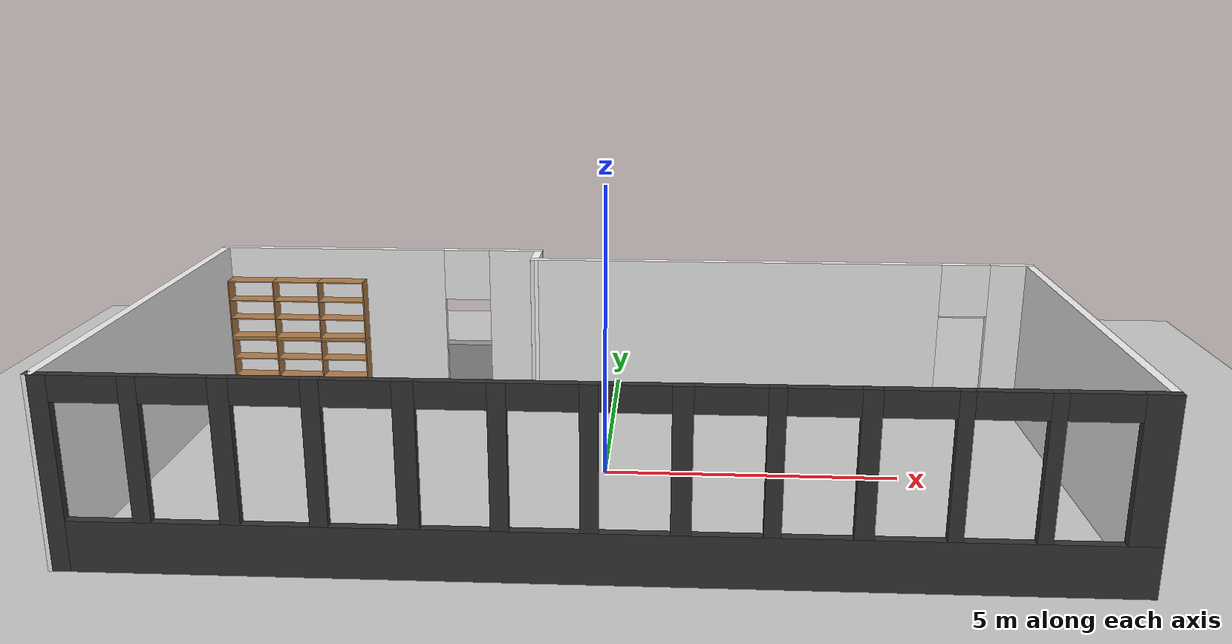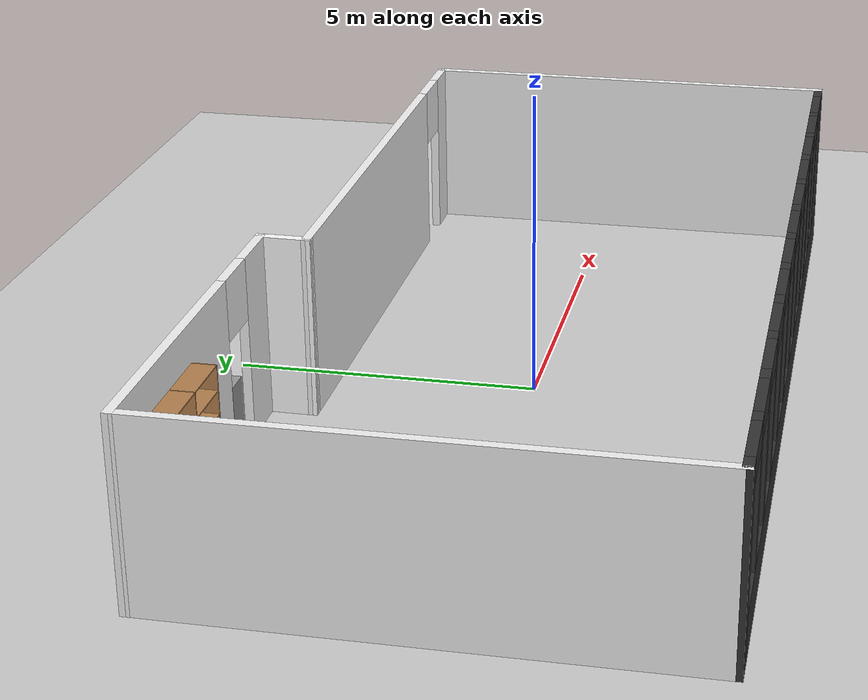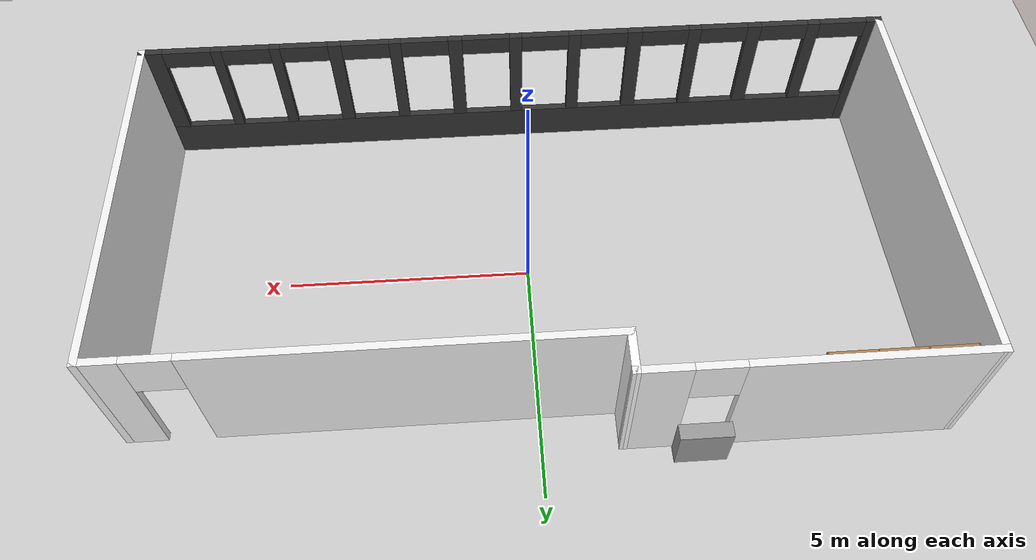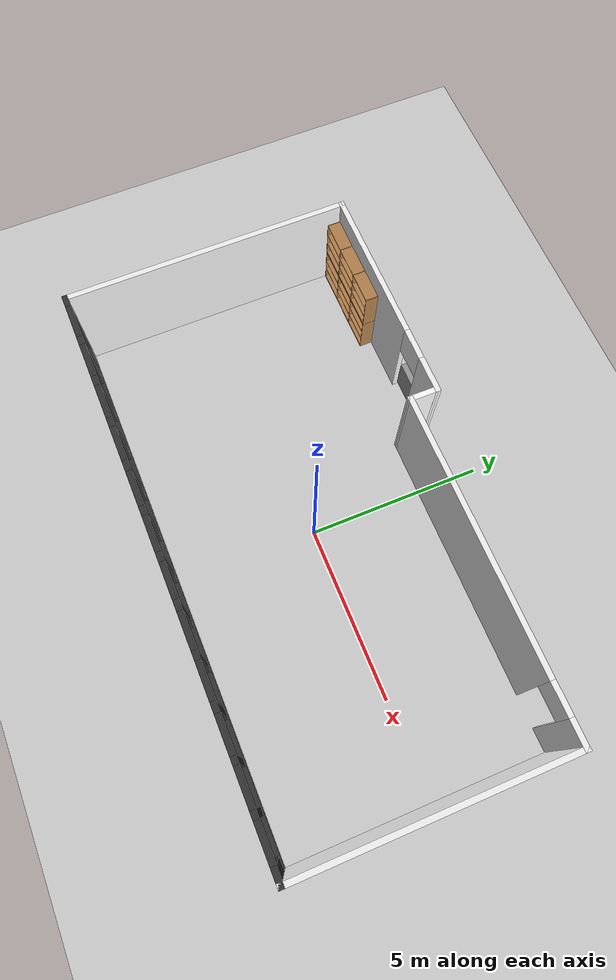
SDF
<sdf version="1.6">
 <world name="default">
  <model name="lab_empty">
   <link name="Wall_10">
    <pose>-4.66996 4.04955 0 0 -0 0</pose>
    <visual name="Wall_10_Visual_0">
     <pose>-0.979064 0 1.5 0 -0 0</pose>
     <geometry><box><size>4.46087 0.15 3</size></box></geometry>
     <material>
      <script>
       <uri>file://final_project_world/materials/scripts</uri>
       <uri>file://final_project_world/materials/textures</uri>
       <name>Wall/Image</name>
      </script>
      <ambient>0.95 0.95 0.95 1</ambient>
     </material>
     <meta><layer>0</layer></meta>
    </visual>
    <collision name="Wall_10_Collision_0">
     <geometry><box><size>4.46087 0.15 3</size></box></geometry>
     <pose>-0.979064 0 1.5 0 -0 0</pose>
    </collision>
    <visual name="Wall_10_Visual_1">
     <pose>2.68044 0 1.5 0 -0 0</pose>
     <geometry><box><size>1.05813 0.15 3</size></box></geometry>
     <material>
      <script>
       <uri>file://final_project_world/materials/scripts</uri>
       <uri>file://final_project_world/materials/textures</uri>
       <name>Wall/Image</name>
      </script>
      <ambient>0.95 0.95 0.95 1</ambient>
     </material>
     <meta><layer>0</layer></meta>
    </visual>
    <collision name="Wall_10_Collision_1">
     <geometry><box><size>1.05813 0.15 3</size></box></geometry>
     <pose>2.68044 0 1.5 0 -0 0</pose>
    </collision>
    <visual name="Wall_10_Visual_2">
     <pose>1.70137 0 2.5 0 -0 0</pose>
     <geometry><box><size>0.9 0.15 1</size></box></geometry>
     <material>
      <script>
       <uri>file://final_project_world/materials/scripts</uri>
       <uri>file://final_project_world/materials/textures</uri>
       <name>Wall/Image</name>
      </script>
      <ambient>0.95 0.95 0.95 1</ambient>
     </material>
     <meta><layer>0</layer></meta>
    </visual>
    <collision name="Wall_10_Collision_2">
     <geometry><box><size>0.9 0.15 1</size></box></geometry>
     <pose>1.70137 0 2.5 0 -0 0</pose>
    </collision>
   </link>
   <link name="Wall_13">
    <collision name="Wall_13_Collision">
     <geometry><box><size>0.900067 0.15 3</size></box></geometry>
     <pose>0 0 1.5 0 -0 0</pose>
    </collision>
    <visual name="Wall_13_Visual">
     <pose>0 0 1.5 0 -0 0</pose>
     <geometry><box><size>0.900067 0.15 3</size></box></geometry>
     <material>
      <script>
       <uri>file://final_project_world/materials/scripts</uri>
       <uri>file://final_project_world/materials/textures</uri>
       <name>Wall/Image</name>
      </script>
      <ambient>1 1 1 1</ambient>
     </material>
     <meta><layer>0</layer></meta>
    </visual>
    <pose>-1.54046 3.67455 0 0 -0 -1.58413</pose>
   </link>
   <link name="Wall_15">
    <pose>0.004542 -4.05046 0 0 -0 0</pose>
    <visual name="Wall_15_Visual_0">
     <pose>-7.70321 0 1.5 0 -0 0</pose>
     <geometry><box><size>0.343585 0.15 3</size></box></geometry>
     <material>
      <script>
       <uri>file://final_project_world/materials/scripts</uri>
       <uri>file://final_project_world/materials/textures</uri>
       <name>Wall/Image</name>
      </script>
      <ambient>0.2 0.2 0.2 1</ambient>
     </material>
     <meta><layer>0</layer></meta>
    </visual>
    <collision name="Wall_15_Collision_0">
     <geometry><box><size>0.343585 0.15 3</size></box></geometry>
     <pose>-7.70321 0 1.5 0 -0 0</pose>
    </collision>
    <visual name="Wall_15_Visual_1">
     <pose>0.171792 0 0.4 0 -0 0</pose>
     <geometry><box><size>15.4064 0.15 0.8</size></box></geometry>
     <material>
      <script>
       <uri>file://final_project_world/materials/scripts</uri>
       <uri>file://final_project_world/materials/textures</uri>
       <name>Wall/Image</name>
      </script>
      <ambient>0.2 0.2 0.2 1</ambient>
     </material>
     <meta><layer>0</layer></meta>
    </visual>
    <collision name="Wall_15_Collision_1">
     <geometry><box><size>15.4064 0.15 0.8</size></box></geometry>
     <pose>0.171792 0 0.4 0 -0 0</pose>
    </collision>
    <visual name="Wall_15_Visual_2">
     <pose>-6.39989 0 1.9 0 -0 0</pose>
     <geometry><box><size>0.263044 0.15 2.2</size></box></geometry>
     <material>
      <script>
       <uri>file://final_project_world/materials/scripts</uri>
       <uri>file://final_project_world/materials/textures</uri>
       <name>Wall/Image</name>
      </script>
      <ambient>0.2 0.2 0.2 1</ambient>
     </material>
     <meta><layer>0</layer></meta>
    </visual>
    <collision name="Wall_15_Collision_2">
     <geometry><box><size>0.263044 0.15 2.2</size></box></geometry>
     <pose>-6.39989 0 1.9 0 -0 0</pose>
    </collision>
    <visual name="Wall_15_Visual_3">
     <pose>-5.12163 0 1.9 0 -0 0</pose>
     <geometry><box><size>0.293478 0.15 2.2</size></box></geometry>
     <material>
      <script>
       <uri>file://final_project_world/materials/scripts</uri>
       <uri>file://final_project_world/materials/textures</uri>
       <name>Wall/Image</name>
      </script>
      <ambient>0.2 0.2 0.2 1</ambient>
     </material>
     <meta><layer>0</layer></meta>
    </visual>
    <collision name="Wall_15_Collision_3">
     <geometry><box><size>0.293478 0.15 2.2</size></box></geometry>
     <pose>-5.12163 0 1.9 0 -0 0</pose>
    </collision>
    <visual name="Wall_15_Visual_4">
     <pose>-3.84337 0 1.9 0 -0 0</pose>
     <geometry><box><size>0.263043 0.15 2.2</size></box></geometry>
     <material>
      <script>
       <uri>file://final_project_world/materials/scripts</uri>
       <uri>file://final_project_world/materials/textures</uri>
       <name>Wall/Image</name>
      </script>
      <ambient>0.2 0.2 0.2 1</ambient>
     </material>
     <meta><layer>0</layer></meta>
    </visual>
    <collision name="Wall_15_Collision_4">
     <geometry><box><size>0.263043 0.15 2.2</size></box></geometry>
     <pose>-3.84337 0 1.9 0 -0 0</pose>
    </collision>
    <visual name="Wall_15_Visual_5">
     <pose>-2.5575 0 1.9 0 -0 0</pose>
     <geometry><box><size>0.308696 0.15 2.2</size></box></geometry>
     <material>
      <script>
       <uri>file://final_project_world/materials/scripts</uri>
       <uri>file://final_project_world/materials/textures</uri>
       <name>Wall/Image</name>
      </script>
      <ambient>0.2 0.2 0.2 1</ambient>
     </material>
     <meta><layer>0</layer></meta>
    </visual>
    <collision name="Wall_15_Collision_5">
     <geometry><box><size>0.308696 0.15 2.2</size></box></geometry>
     <pose>-2.5575 0 1.9 0 -0 0</pose>
    </collision>
    <visual name="Wall_15_Visual_6">
     <pose>-1.27163 0 1.9 0 -0 0</pose>
     <geometry><box><size>0.263044 0.15 2.2</size></box></geometry>
     <material>
      <script>
       <uri>file://final_project_world/materials/scripts</uri>
       <uri>file://final_project_world/materials/textures</uri>
       <name>Wall/Image</name>
      </script>
      <ambient>0.2 0.2 0.2 1</ambient>
     </material>
     <meta><layer>0</layer></meta>
    </visual>
    <collision name="Wall_15_Collision_6">
     <geometry><box><size>0.263044 0.15 2.2</size></box></geometry>
     <pose>-1.27163 0 1.9 0 -0 0</pose>
    </collision>
    <visual name="Wall_15_Visual_7">
     <pose>-0.008589 0 1.9 0 -0 0</pose>
     <geometry><box><size>0.263043 0.15 2.2</size></box></geometry>
     <material>
      <script>
       <uri>file://final_project_world/materials/scripts</uri>
       <uri>file://final_project_world/materials/textures</uri>
       <name>Wall/Image</name>
      </script>
      <ambient>0.2 0.2 0.2 1</ambient>
     </material>
     <meta><layer>0</layer></meta>
    </visual>
    <collision name="Wall_15_Collision_7">
     <geometry><box><size>0.263043 0.15 2.2</size></box></geometry>
     <pose>-0.008589 0 1.9 0 -0 0</pose>
    </collision>
    <visual name="Wall_15_Visual_8">
     <pose>1.26967 0 1.9 0 -0 0</pose>
     <geometry><box><size>0.293478 0.15 2.2</size></box></geometry>
     <material>
      <script>
       <uri>file://final_project_world/materials/scripts</uri>
       <uri>file://final_project_world/materials/textures</uri>
       <name>Wall/Image</name>
      </script>
      <ambient>0.2 0.2 0.2 1</ambient>
     </material>
     <meta><layer>0</layer></meta>
    </visual>
    <collision name="Wall_15_Collision_8">
     <geometry><box><size>0.293478 0.15 2.2</size></box></geometry>
     <pose>1.26967 0 1.9 0 -0 0</pose>
    </collision>
    <visual name="Wall_15_Visual_9">
     <pose>2.54032 0 1.9 0 -0 0</pose>
     <geometry><box><size>0.247826 0.15 2.2</size></box></geometry>
     <material>
      <script>
       <uri>file://final_project_world/materials/scripts</uri>
       <uri>file://final_project_world/materials/textures</uri>
       <name>Wall/Image</name>
      </script>
      <ambient>0.2 0.2 0.2 1</ambient>
     </material>
     <meta><layer>0</layer></meta>
    </visual>
    <collision name="Wall_15_Collision_9">
     <geometry><box><size>0.247826 0.15 2.2</size></box></geometry>
     <pose>2.54032 0 1.9 0 -0 0</pose>
    </collision>
    <visual name="Wall_15_Visual_10">
     <pose>3.80337 0 1.9 0 -0 0</pose>
     <geometry><box><size>0.278261 0.15 2.2</size></box></geometry>
     <material>
      <script>
       <uri>file://final_project_world/materials/scripts</uri>
       <uri>file://final_project_world/materials/textures</uri>
       <name>Wall/Image</name>
      </script>
      <ambient>0.2 0.2 0.2 1</ambient>
     </material>
     <meta><layer>0</layer></meta>
    </visual>
    <collision name="Wall_15_Collision_10">
     <geometry><box><size>0.278261 0.15 2.2</size></box></geometry>
     <pose>3.80337 0 1.9 0 -0 0</pose>
    </collision>
    <visual name="Wall_15_Visual_11">
     <pose>5.05119 0 1.9 0 -0 0</pose>
     <geometry><box><size>0.217391 0.15 2.2</size></box></geometry>
     <material>
      <script>
       <uri>file://final_project_world/materials/scripts</uri>
       <uri>file://final_project_world/materials/textures</uri>
       <name>Wall/Image</name>
      </script>
      <ambient>0.2 0.2 0.2 1</ambient>
     </material>
     <meta><layer>0</layer></meta>
    </visual>
    <collision name="Wall_15_Collision_11">
     <geometry><box><size>0.217391 0.15 2.2</size></box></geometry>
     <pose>5.05119 0 1.9 0 -0 0</pose>
    </collision>
    <visual name="Wall_15_Visual_12">
     <pose>6.26858 0 1.9 0 -0 0</pose>
     <geometry><box><size>0.217391 0.15 2.2</size></box></geometry>
     <material>
      <script>
       <uri>file://final_project_world/materials/scripts</uri>
       <uri>file://final_project_world/materials/textures</uri>
       <name>Wall/Image</name>
      </script>
      <ambient>0.2 0.2 0.2 1</ambient>
     </material>
     <meta><layer>0</layer></meta>
    </visual>
    <collision name="Wall_15_Collision_12">
     <geometry><box><size>0.217391 0.15 2.2</size></box></geometry>
     <pose>6.26858 0 1.9 0 -0 0</pose>
    </collision>
    <visual name="Wall_15_Visual_13">
     <pose>7.62614 0 1.9 0 -0 0</pose>
     <geometry><box><size>0.497719 0.15 2.2</size></box></geometry>
     <material>
      <script>
       <uri>file://final_project_world/materials/scripts</uri>
       <uri>file://final_project_world/materials/textures</uri>
       <name>Wall/Image</name>
      </script>
      <ambient>0.2 0.2 0.2 1</ambient>
     </material>
     <meta><layer>0</layer></meta>
    </visual>
    <collision name="Wall_15_Collision_13">
     <geometry><box><size>0.497719 0.15 2.2</size></box></geometry>
     <pose>7.62614 0 1.9 0 -0 0</pose>
    </collision>
    <visual name="Wall_15_Visual_14">
     <pose>-7.03141 0 2.8 0 -0 0</pose>
     <geometry><box><size>1 0.15 0.4</size></box></geometry>
     <material>
      <script>
       <uri>file://final_project_world/materials/scripts</uri>
       <uri>file://final_project_world/materials/textures</uri>
       <name>Wall/Image</name>
      </script>
      <ambient>0.2 0.2 0.2 1</ambient>
     </material>
     <meta><layer>0</layer></meta>
    </visual>
    <collision name="Wall_15_Collision_14">
     <geometry><box><size>1 0.15 0.4</size></box></geometry>
     <pose>-7.03141 0 2.8 0 -0 0</pose>
    </collision>
    <visual name="Wall_15_Visual_15">
     <pose>-5.76837 0 2.8 0 -0 0</pose>
     <geometry><box><size>1 0.15 0.4</size></box></geometry>
     <material>
      <script>
       <uri>file://final_project_world/materials/scripts</uri>
       <uri>file://final_project_world/materials/textures</uri>
       <name>Wall/Image</name>
      </script>
      <ambient>0.2 0.2 0.2 1</ambient>
     </material>
     <meta><layer>0</layer></meta>
    </visual>
    <collision name="Wall_15_Collision_15">
     <geometry><box><size>1 0.15 0.4</size></box></geometry>
     <pose>-5.76837 0 2.8 0 -0 0</pose>
    </collision>
    <visual name="Wall_15_Visual_16">
     <pose>-4.47489 0 2.8 0 -0 0</pose>
     <geometry><box><size>1 0.15 0.4</size></box></geometry>
     <material>
      <script>
       <uri>file://final_project_world/materials/scripts</uri>
       <uri>file://final_project_world/materials/textures</uri>
       <name>Wall/Image</name>
      </script>
      <ambient>0.2 0.2 0.2 1</ambient>
     </material>
     <meta><layer>0</layer></meta>
    </visual>
    <collision name="Wall_15_Collision_16">
     <geometry><box><size>1 0.15 0.4</size></box></geometry>
     <pose>-4.47489 0 2.8 0 -0 0</pose>
    </collision>
    <visual name="Wall_15_Visual_17">
     <pose>-3.21185 0 2.8 0 -0 0</pose>
     <geometry><box><size>1 0.15 0.4</size></box></geometry>
     <material>
      <script>
       <uri>file://final_project_world/materials/scripts</uri>
       <uri>file://final_project_world/materials/textures</uri>
       <name>Wall/Image</name>
      </script>
      <ambient>0.2 0.2 0.2 1</ambient>
     </material>
     <meta><layer>0</layer></meta>
    </visual>
    <collision name="Wall_15_Collision_17">
     <geometry><box><size>1 0.15 0.4</size></box></geometry>
     <pose>-3.21185 0 2.8 0 -0 0</pose>
    </collision>
    <visual name="Wall_15_Visual_18">
     <pose>-1.90315 0 2.8 0 -0 0</pose>
     <geometry><box><size>1 0.15 0.4</size></box></geometry>
     <material>
      <script>
       <uri>file://final_project_world/materials/scripts</uri>
       <uri>file://final_project_world/materials/textures</uri>
       <name>Wall/Image</name>
      </script>
      <ambient>0.2 0.2 0.2 1</ambient>
     </material>
     <meta><layer>0</layer></meta>
    </visual>
    <collision name="Wall_15_Collision_18">
     <geometry><box><size>1 0.15 0.4</size></box></geometry>
     <pose>-1.90315 0 2.8 0 -0 0</pose>
    </collision>
    <visual name="Wall_15_Visual_19">
     <pose>-0.640111 0 2.8 0 -0 0</pose>
     <geometry><box><size>1 0.15 0.4</size></box></geometry>
     <material>
      <script>
       <uri>file://final_project_world/materials/scripts</uri>
       <uri>file://final_project_world/materials/textures</uri>
       <name>Wall/Image</name>
      </script>
      <ambient>0.2 0.2 0.2 1</ambient>
     </material>
     <meta><layer>0</layer></meta>
    </visual>
    <collision name="Wall_15_Collision_19">
     <geometry><box><size>1 0.15 0.4</size></box></geometry>
     <pose>-0.640111 0 2.8 0 -0 0</pose>
    </collision>
    <visual name="Wall_15_Visual_20">
     <pose>0.622933 0 2.8 0 -0 0</pose>
     <geometry><box><size>1 0.15 0.4</size></box></geometry>
     <material>
      <script>
       <uri>file://final_project_world/materials/scripts</uri>
       <uri>file://final_project_world/materials/textures</uri>
       <name>Wall/Image</name>
      </script>
      <ambient>0.2 0.2 0.2 1</ambient>
     </material>
     <meta><layer>0</layer></meta>
    </visual>
    <collision name="Wall_15_Collision_20">
     <geometry><box><size>1 0.15 0.4</size></box></geometry>
     <pose>0.622933 0 2.8 0 -0 0</pose>
    </collision>
    <visual name="Wall_15_Visual_21">
     <pose>1.91641 0 2.8 0 -0 0</pose>
     <geometry><box><size>1 0.15 0.4</size></box></geometry>
     <material>
      <script>
       <uri>file://final_project_world/materials/scripts</uri>
       <uri>file://final_project_world/materials/textures</uri>
       <name>Wall/Image</name>
      </script>
      <ambient>0.2 0.2 0.2 1</ambient>
     </material>
     <meta><layer>0</layer></meta>
    </visual>
    <collision name="Wall_15_Collision_21">
     <geometry><box><size>1 0.15 0.4</size></box></geometry>
     <pose>1.91641 0 2.8 0 -0 0</pose>
    </collision>
    <visual name="Wall_15_Visual_22">
     <pose>3.16424 0 2.8 0 -0 0</pose>
     <geometry><box><size>1 0.15 0.4</size></box></geometry>
     <material>
      <script>
       <uri>file://final_project_world/materials/scripts</uri>
       <uri>file://final_project_world/materials/textures</uri>
       <name>Wall/Image</name>
      </script>
      <ambient>0.2 0.2 0.2 1</ambient>
     </material>
     <meta><layer>0</layer></meta>
    </visual>
    <collision name="Wall_15_Collision_22">
     <geometry><box><size>1 0.15 0.4</size></box></geometry>
     <pose>3.16424 0 2.8 0 -0 0</pose>
    </collision>
    <visual name="Wall_15_Visual_23">
     <pose>4.4425 0 2.8 0 -0 0</pose>
     <geometry><box><size>1 0.15 0.4</size></box></geometry>
     <material>
      <script>
       <uri>file://final_project_world/materials/scripts</uri>
       <uri>file://final_project_world/materials/textures</uri>
       <name>Wall/Image</name>
      </script>
      <ambient>0.2 0.2 0.2 1</ambient>
     </material>
     <meta><layer>0</layer></meta>
    </visual>
    <collision name="Wall_15_Collision_23">
     <geometry><box><size>1 0.15 0.4</size></box></geometry>
     <pose>4.4425 0 2.8 0 -0 0</pose>
    </collision>
    <visual name="Wall_15_Visual_24">
     <pose>5.65989 0 2.8 0 -0 0</pose>
     <geometry><box><size>1 0.15 0.4</size></box></geometry>
     <material>
      <script>
       <uri>file://final_project_world/materials/scripts</uri>
       <uri>file://final_project_world/materials/textures</uri>
       <name>Wall/Image</name>
      </script>
      <ambient>0.2 0.2 0.2 1</ambient>
     </material>
     <meta><layer>0</layer></meta>
    </visual>
    <collision name="Wall_15_Collision_24">
     <geometry><box><size>1 0.15 0.4</size></box></geometry>
     <pose>5.65989 0 2.8 0 -0 0</pose>
    </collision>
    <visual name="Wall_15_Visual_25">
     <pose>6.87728 0 2.8 0 -0 0</pose>
     <geometry><box><size>1 0.15 0.4</size></box></geometry>
     <material>
      <script>
       <uri>file://final_project_world/materials/scripts</uri>
       <uri>file://final_project_world/materials/textures</uri>
       <name>Wall/Image</name>
      </script>
      <ambient>0.2 0.2 0.2 1</ambient>
     </material>
     <meta><layer>0</layer></meta>
    </visual>
    <collision name="Wall_15_Collision_25">
     <geometry><box><size>1 0.15 0.4</size></box></geometry>
     <pose>6.87728 0 2.8 0 -0 0</pose>
    </collision>
   </link>
   <link name="Wall_17">
    <collision name="Wall_17_Collision">
     <geometry><box><size>8.25 0.15 3</size></box></geometry>
     <pose>0 0 1.5 0 -0 0</pose>
    </collision>
    <visual name="Wall_17_Visual">
     <pose>0 0 1.5 0 -0 0</pose>
     <geometry><box><size>8.25 0.15 3</size></box></geometry>
     <material>
      <script>
       <uri>file://final_project_world/materials/scripts</uri>
       <uri>file://final_project_world/materials/textures</uri>
       <name>Wall/Image</name>
      </script>
      <ambient>0.95 0.95 0.95 1</ambient>
     </material>
     <meta><layer>0</layer></meta>
    </visual>
    <pose>-7.79996 -0.000455 0 0 -0 -1.56968</pose>
   </link>
   <link name="Wall_2">
    <collision name="Wall_2_Collision">
     <geometry><box><size>7.5 0.15 3</size></box></geometry>
     <pose>0 0 1.5 0 -0 0</pose>
    </collision>
    <visual name="Wall_2_Visual">
     <pose>0 0 1.5 0 -0 0</pose>
     <geometry><box><size>7.5 0.15 3</size></box></geometry>
     <material>
      <script>
       <uri>file://final_project_world/materials/scripts</uri>
       <uri>file://final_project_world/materials/textures</uri>
       <name>Wall/Image</name>
      </script>
      <ambient>0.95 0.95 0.95 1</ambient>
     </material>
     <meta><layer>0</layer></meta>
    </visual>
    <pose>7.80454 -0.375455 0 0 -0 1.5708</pose>
   </link>
   <link name="Wall_3">
    <pose>3.12954 3.29955 0 0 -0 3.14159</pose>
    <visual name="Wall_3_Visual_0">
     <pose>-4.346 0 1.5 0 -0 0</pose>
     <geometry><box><size>0.808 0.15 3</size></box></geometry>
     <material>
      <script>
       <uri>file://final_project_world/materials/scripts</uri>
       <uri>file://final_project_world/materials/textures</uri>
       <name>Wall/Image</name>
      </script>
      <ambient>0.95 0.95 0.95 1</ambient>
     </material>
     <meta><layer>0</layer></meta>
    </visual>
    <collision name="Wall_3_Collision_0">
     <geometry><box><size>0.808 0.15 3</size></box></geometry>
     <pose>-4.346 0 1.5 0 -0 0</pose>
    </collision>
    <visual name="Wall_3_Visual_1">
     <pose>0.854 0 1.5 0 -0 0</pose>
     <geometry><box><size>7.792 0.15 3</size></box></geometry>
     <material>
      <script>
       <uri>file://final_project_world/materials/scripts</uri>
       <uri>file://final_project_world/materials/textures</uri>
       <name>Wall/Image</name>
      </script>
      <ambient>0.95 0.95 0.95 1</ambient>
     </material>
     <meta><layer>0</layer></meta>
    </visual>
    <collision name="Wall_3_Collision_1">
     <geometry><box><size>7.792 0.15 3</size></box></geometry>
     <pose>0.854 0 1.5 0 -0 0</pose>
    </collision>
    <visual name="Wall_3_Visual_2">
     <pose>-3.492 0 2.5 0 -0 0</pose>
     <geometry><box><size>0.9 0.15 1</size></box></geometry>
     <material>
      <script>
       <uri>file://final_project_world/materials/scripts</uri>
       <uri>file://final_project_world/materials/textures</uri>
       <name>Wall/Image</name>
      </script>
      <ambient>0.95 0.95 0.95 1</ambient>
     </material>
     <meta><layer>0</layer></meta>
    </visual>
    <collision name="Wall_3_Collision_2">
     <geometry><box><size>0.9 0.15 1</size></box></geometry>
     <pose>-3.492 0 2.5 0 -0 0</pose>
    </collision>
   </link>
   <static>1</static>
  </model>
  <model name="ground_plane">
   <static>1</static>
   <link name="link">
    <collision name="collision">
     <geometry><plane><normal>0 0 1</normal><size>16 9</size></plane></geometry>
     <surface>
      <contact><collide_bitmask>65535</collide_bitmask></contact>
      <friction><ode><mu>100</mu><mu2>50</mu2></ode></friction>
     </surface>
    </collision>
    <visual name="visual">
     <cast_shadows>0</cast_shadows>
     <geometry><plane><normal>0 0 1</normal><size>16 8</size></plane></geometry>
     <material>
      <script>
       <uri>file://final_project/materials/scripts</uri>
       <uri>file://final_project/materials/textures</uri>
       <name>MyGroundPlane/Image</name>
      </script>
     </material>
    </visual>
   </link>
  </model>
  <model name="unit_box">
   <link name="link">
    <inertial>
     <mass>0.300562</mass>
     <inertia>
      <ixx>0.0273083</ixx>
      <ixy>0</ixy>
      <ixz>0</ixz>
      <iyy>0.0500937</iyy>
      <iyz>0</iyz>
      <izz>0.0273083</izz>
     </inertia>
    </inertial>
    <pose>-0 -0.356332 0 0 -0 0</pose>
    <visual name="visual">
     <geometry><box><size>1 0.30048 1</size></box></geometry>
     <material>
      <script><name>Gazebo/Grey</name><uri>file://media/materials/scripts/gazebo.material</uri></script>
     </material>
    </visual>
    <collision name="collision">
     <geometry><box><size>1 0.30048 1</size></box></geometry>
     <surface>
      <friction>
       <ode><mu>1</mu><mu2>1</mu2><fdir1>0 0 0</fdir1><slip1>0</slip1><slip2>0</slip2></ode>
       <torsional>
        <coefficient>1</coefficient>
        <patch_radius>0</patch_radius>
        <surface_radius>0</surface_radius>
        <use_patch_radius>1</use_patch_radius>
        <ode><slip>0</slip></ode>
       </torsional>
      </friction>
      <bounce><restitution_coefficient>0</restitution_coefficient><threshold>1e+06</threshold></bounce>
      <contact>
       <collide_without_contact>0</collide_without_contact>
       <collide_without_contact_bitmask>1</collide_without_contact_bitmask>
       <collide_bitmask>1</collide_bitmask>
       <ode>
        <soft_cfm>0</soft_cfm>
        <soft_erp>0.2</soft_erp>
        <kp>1e+13</kp>
        <kd>1</kd>
        <max_vel>0.01</max_vel>
        <min_depth>0</min_depth>
       </ode>
       <bullet>
        <split_impulse>1</split_impulse>
        <split_impulse_penetration_threshold>-0.01</split_impulse_penetration_threshold>
        <soft_cfm>0</soft_cfm>
        <soft_erp>0.2</soft_erp>
        <kp>1e+13</kp>
        <kd>1</kd>
       </bullet>
      </contact>
     </surface>
    </collision>
   </link>
   <static>1</static>
   <pose>-2.96131 4.66258 0.5 0 -0 0</pose>
  </model>
  <model name="Bookshelf">
   <static>1</static>
   <link name="link">
    <inertial><mass>1</mass></inertial>
    <collision name="back">
     <pose>0 0.005 0.6 0 -0 0</pose>
     <geometry><box><size>0.9 0.01 1.2</size></box></geometry>
    </collision>
    <visual name="visual1">
     <pose>0 0.005 0.6 0 -0 0</pose>
     <geometry><box><size>0.9 0.01 1.2</size></box></geometry>
     <material>
      <diffuse>1 1 1 1</diffuse>
      <script><uri>file://media/materials/scripts/gazebo.material</uri><name>Gazebo/Wood</name></script>
     </material>
    </visual>
    <collision name="left_side">
     <pose>0.45 -0.195 0.6 0 -0 0</pose>
     <geometry><box><size>0.02 0.4 1.2</size></box></geometry>
    </collision>
    <visual name="visual2">
     <pose>0.45 -0.195 0.6 0 -0 0</pose>
     <geometry><box><size>0.02 0.4 1.2</size></box></geometry>
     <material>
      <diffuse>1 1 1 1</diffuse>
      <script><uri>file://media/materials/scripts/gazebo.material</uri><name>Gazebo/Wood</name></script>
     </material>
    </visual>
    <collision name="right_side">
     <pose>-0.45 -0.195 0.6 0 -0 0</pose>
     <geometry><box><size>0.02 0.4 1.2</size></box></geometry>
    </collision>
    <visual name="visual3">
     <pose>-0.45 -0.195 0.6 0 -0 0</pose>
     <geometry><box><size>0.02 0.4 1.2</size></box></geometry>
     <material>
      <diffuse>1 1 1 1</diffuse>
      <script><uri>file://media/materials/scripts/gazebo.material</uri><name>Gazebo/Wood</name></script>
     </material>
    </visual>
    <collision name="bottom">
     <pose>0 -0.195 0.03 0 -0 0</pose>
     <geometry><box><size>0.88 0.4 0.06</size></box></geometry>
    </collision>
    <visual name="visual4">
     <pose>0 -0.195 0.03 0 -0 0</pose>
     <geometry><box><size>0.88 0.4 0.06</size></box></geometry>
     <material>
      <diffuse>1 1 1 1</diffuse>
      <script><uri>file://media/materials/scripts/gazebo.material</uri><name>Gazebo/Wood</name></script>
     </material>
    </visual>
    <collision name="top">
     <pose>0 -0.195 1.19 0 -0 0</pose>
     <geometry><box><size>0.88 0.4 0.02</size></box></geometry>
    </collision>
    <visual name="visual5">
     <pose>0 -0.195 1.19 0 -0 0</pose>
     <geometry><box><size>0.88 0.4 0.02</size></box></geometry>
     <material>
      <diffuse>1 1 1 1</diffuse>
      <script><uri>file://media/materials/scripts/gazebo.material</uri><name>Gazebo/Wood</name></script>
     </material>
    </visual>
    <collision name="low_shelf">
     <pose>0 -0.195 0.43 0 -0 0</pose>
     <geometry><box><size>0.88 0.4 0.02</size></box></geometry>
    </collision>
    <visual name="visual6">
     <pose>0 -0.195 0.43 0 -0 0</pose>
     <geometry><box><size>0.88 0.4 0.02</size></box></geometry>
     <material>
      <diffuse>1 1 1 1</diffuse>
      <script><uri>file://media/materials/scripts/gazebo.material</uri><name>Gazebo/Wood</name></script>
     </material>
    </visual>
    <collision name="high_shelf">
     <pose>0 -0.195 0.8 0 -0 0</pose>
     <geometry><box><size>0.88 0.4 0.02</size></box></geometry>
    </collision>
    <visual name="visual7">
     <pose>0 -0.195 0.8 0 -0 0</pose>
     <geometry><box><size>0.88 0.4 0.02</size></box></geometry>
     <material>
      <diffuse>1 1 1 1</diffuse>
      <script><uri>file://media/materials/scripts/gazebo.material</uri><name>Gazebo/Wood</name></script>
     </material>
    </visual>
   </link>
   <pose>-7.25 4 0 0 -0 0</pose>
  </model>
  <model name="Bookshelf_clone">
   <static>1</static>
   <link name="link">
    <inertial><mass>1</mass></inertial>
    <collision name="back">
     <pose>0 0.005 0.6 0 -0 0</pose>
     <geometry><box><size>0.9 0.01 1.2</size></box></geometry>
    </collision>
    <visual name="visual1">
     <pose>0 0.005 0.6 0 -0 0</pose>
     <geometry><box><size>0.9 0.01 1.2</size></box></geometry>
     <material>
      <diffuse>1 1 1 1</diffuse>
      <script><uri>file://media/materials/scripts/gazebo.material</uri><name>Gazebo/Wood</name></script>
     </material>
    </visual>
    <collision name="left_side">
     <pose>0.45 -0.195 0.6 0 -0 0</pose>
     <geometry><box><size>0.02 0.4 1.2</size></box></geometry>
    </collision>
    <visual name="visual2">
     <pose>0.45 -0.195 0.6 0 -0 0</pose>
     <geometry><box><size>0.02 0.4 1.2</size></box></geometry>
     <material>
      <diffuse>1 1 1 1</diffuse>
      <script><uri>file://media/materials/scripts/gazebo.material</uri><name>Gazebo/Wood</name></script>
     </material>
    </visual>
    <collision name="right_side">
     <pose>-0.45 -0.195 0.6 0 -0 0</pose>
     <geometry><box><size>0.02 0.4 1.2</size></box></geometry>
    </collision>
    <visual name="visual3">
     <pose>-0.45 -0.195 0.6 0 -0 0</pose>
     <geometry><box><size>0.02 0.4 1.2</size></box></geometry>
     <material>
      <diffuse>1 1 1 1</diffuse>
      <script><uri>file://media/materials/scripts/gazebo.material</uri><name>Gazebo/Wood</name></script>
     </material>
    </visual>
    <collision name="bottom">
     <pose>0 -0.195 0.03 0 -0 0</pose>
     <geometry><box><size>0.88 0.4 0.06</size></box></geometry>
    </collision>
    <visual name="visual4">
     <pose>0 -0.195 0.03 0 -0 0</pose>
     <geometry><box><size>0.88 0.4 0.06</size></box></geometry>
     <material>
      <diffuse>1 1 1 1</diffuse>
      <script><uri>file://media/materials/scripts/gazebo.material</uri><name>Gazebo/Wood</name></script>
     </material>
    </visual>
    <collision name="top">
     <pose>0 -0.195 1.19 0 -0 0</pose>
     <geometry><box><size>0.88 0.4 0.02</size></box></geometry>
    </collision>
    <visual name="visual5">
     <pose>0 -0.195 1.19 0 -0 0</pose>
     <geometry><box><size>0.88 0.4 0.02</size></box></geometry>
     <material>
      <diffuse>1 1 1 1</diffuse>
      <script><uri>file://media/materials/scripts/gazebo.material</uri><name>Gazebo/Wood</name></script>
     </material>
    </visual>
    <collision name="low_shelf">
     <pose>0 -0.195 0.43 0 -0 0</pose>
     <geometry><box><size>0.88 0.4 0.02</size></box></geometry>
    </collision>
    <visual name="visual6">
     <pose>0 -0.195 0.43 0 -0 0</pose>
     <geometry><box><size>0.88 0.4 0.02</size></box></geometry>
     <material>
      <diffuse>1 1 1 1</diffuse>
      <script><uri>file://media/materials/scripts/gazebo.material</uri><name>Gazebo/Wood</name></script>
     </material>
    </visual>
    <collision name="high_shelf">
     <pose>0 -0.195 0.8 0 -0 0</pose>
     <geometry><box><size>0.88 0.4 0.02</size></box></geometry>
    </collision>
    <visual name="visual7">
     <pose>0 -0.195 0.8 0 -0 0</pose>
     <geometry><box><size>0.88 0.4 0.02</size></box></geometry>
     <material>
      <diffuse>1 1 1 1</diffuse>
      <script><uri>file://media/materials/scripts/gazebo.material</uri><name>Gazebo/Wood</name></script>
     </material>
    </visual>
   </link>
   <pose>-6.35 4 0 0 -0 0</pose>
  </model>
  <model name="Bookshelf_clone_0">
   <static>1</static>
   <link name="link">
    <inertial><mass>1</mass></inertial>
    <collision name="back">
     <pose>0 0.005 0.6 0 -0 0</pose>
     <geometry><box><size>0.9 0.01 1.2</size></box></geometry>
    </collision>
    <visual name="visual1">
     <pose>0 0.005 0.6 0 -0 0</pose>
     <geometry><box><size>0.9 0.01 1.2</size></box></geometry>
     <material>
      <diffuse>1 1 1 1</diffuse>
      <script><uri>file://media/materials/scripts/gazebo.material</uri><name>Gazebo/Wood</name></script>
     </material>
    </visual>
    <collision name="left_side">
     <pose>0.45 -0.195 0.6 0 -0 0</pose>
     <geometry><box><size>0.02 0.4 1.2</size></box></geometry>
    </collision>
    <visual name="visual2">
     <pose>0.45 -0.195 0.6 0 -0 0</pose>
     <geometry><box><size>0.02 0.4 1.2</size></box></geometry>
     <material>
      <diffuse>1 1 1 1</diffuse>
      <script><uri>file://media/materials/scripts/gazebo.material</uri><name>Gazebo/Wood</name></script>
     </material>
    </visual>
    <collision name="right_side">
     <pose>-0.45 -0.195 0.6 0 -0 0</pose>
     <geometry><box><size>0.02 0.4 1.2</size></box></geometry>
    </collision>
    <visual name="visual3">
     <pose>-0.45 -0.195 0.6 0 -0 0</pose>
     <geometry><box><size>0.02 0.4 1.2</size></box></geometry>
     <material>
      <diffuse>1 1 1 1</diffuse>
      <script><uri>file://media/materials/scripts/gazebo.material</uri><name>Gazebo/Wood</name></script>
     </material>
    </visual>
    <collision name="bottom">
     <pose>0 -0.195 0.03 0 -0 0</pose>
     <geometry><box><size>0.88 0.4 0.06</size></box></geometry>
    </collision>
    <visual name="visual4">
     <pose>0 -0.195 0.03 0 -0 0</pose>
     <geometry><box><size>0.88 0.4 0.06</size></box></geometry>
     <material>
      <diffuse>1 1 1 1</diffuse>
      <script><uri>file://media/materials/scripts/gazebo.material</uri><name>Gazebo/Wood</name></script>
     </material>
    </visual>
    <collision name="top">
     <pose>0 -0.195 1.19 0 -0 0</pose>
     <geometry><box><size>0.88 0.4 0.02</size></box></geometry>
    </collision>
    <visual name="visual5">
     <pose>0 -0.195 1.19 0 -0 0</pose>
     <geometry><box><size>0.88 0.4 0.02</size></box></geometry>
     <material>
      <diffuse>1 1 1 1</diffuse>
      <script><uri>file://media/materials/scripts/gazebo.material</uri><name>Gazebo/Wood</name></script>
     </material>
    </visual>
    <collision name="low_shelf">
     <pose>0 -0.195 0.43 0 -0 0</pose>
     <geometry><box><size>0.88 0.4 0.02</size></box></geometry>
    </collision>
    <visual name="visual6">
     <pose>0 -0.195 0.43 0 -0 0</pose>
     <geometry><box><size>0.88 0.4 0.02</size></box></geometry>
     <material>
      <diffuse>1 1 1 1</diffuse>
      <script><uri>file://media/materials/scripts/gazebo.material</uri><name>Gazebo/Wood</name></script>
     </material>
    </visual>
    <collision name="high_shelf">
     <pose>0 -0.195 0.8 0 -0 0</pose>
     <geometry><box><size>0.88 0.4 0.02</size></box></geometry>
    </collision>
    <visual name="visual7">
     <pose>0 -0.195 0.8 0 -0 0</pose>
     <geometry><box><size>0.88 0.4 0.02</size></box></geometry>
     <material>
      <diffuse>1 1 1 1</diffuse>
      <script><uri>file://media/materials/scripts/gazebo.material</uri><name>Gazebo/Wood</name></script>
     </material>
    </visual>
   </link>
   <pose>-7.25 4 1.2 0 -0 0</pose>
  </model>
  <model name="Bookshelf_clone_clone">
   <static>1</static>
   <link name="link">
    <inertial><mass>1</mass></inertial>
    <collision name="back">
     <pose>0 0.005 0.6 0 -0 0</pose>
     <geometry><box><size>0.9 0.01 1.2</size></box></geometry>
    </collision>
    <visual name="visual1">
     <pose>0 0.005 0.6 0 -0 0</pose>
     <geometry><box><size>0.9 0.01 1.2</size></box></geometry>
     <material>
      <diffuse>1 1 1 1</diffuse>
      <script><uri>file://media/materials/scripts/gazebo.material</uri><name>Gazebo/Wood</name></script>
     </material>
    </visual>
    <collision name="left_side">
     <pose>0.45 -0.195 0.6 0 -0 0</pose>
     <geometry><box><size>0.02 0.4 1.2</size></box></geometry>
    </collision>
    <visual name="visual2">
     <pose>0.45 -0.195 0.6 0 -0 0</pose>
     <geometry><box><size>0.02 0.4 1.2</size></box></geometry>
     <material>
      <diffuse>1 1 1 1</diffuse>
      <script><uri>file://media/materials/scripts/gazebo.material</uri><name>Gazebo/Wood</name></script>
     </material>
    </visual>
    <collision name="right_side">
     <pose>-0.45 -0.195 0.6 0 -0 0</pose>
     <geometry><box><size>0.02 0.4 1.2</size></box></geometry>
    </collision>
    <visual name="visual3">
     <pose>-0.45 -0.195 0.6 0 -0 0</pose>
     <geometry><box><size>0.02 0.4 1.2</size></box></geometry>
     <material>
      <diffuse>1 1 1 1</diffuse>
      <script><uri>file://media/materials/scripts/gazebo.material</uri><name>Gazebo/Wood</name></script>
     </material>
    </visual>
    <collision name="bottom">
     <pose>0 -0.195 0.03 0 -0 0</pose>
     <geometry><box><size>0.88 0.4 0.06</size></box></geometry>
    </collision>
    <visual name="visual4">
     <pose>0 -0.195 0.03 0 -0 0</pose>
     <geometry><box><size>0.88 0.4 0.06</size></box></geometry>
     <material>
      <diffuse>1 1 1 1</diffuse>
      <script><uri>file://media/materials/scripts/gazebo.material</uri><name>Gazebo/Wood</name></script>
     </material>
    </visual>
    <collision name="top">
     <pose>0 -0.195 1.19 0 -0 0</pose>
     <geometry><box><size>0.88 0.4 0.02</size></box></geometry>
    </collision>
    <visual name="visual5">
     <pose>0 -0.195 1.19 0 -0 0</pose>
     <geometry><box><size>0.88 0.4 0.02</size></box></geometry>
     <material>
      <diffuse>1 1 1 1</diffuse>
      <script><uri>file://media/materials/scripts/gazebo.material</uri><name>Gazebo/Wood</name></script>
     </material>
    </visual>
    <collision name="low_shelf">
     <pose>0 -0.195 0.43 0 -0 0</pose>
     <geometry><box><size>0.88 0.4 0.02</size></box></geometry>
    </collision>
    <visual name="visual6">
     <pose>0 -0.195 0.43 0 -0 0</pose>
     <geometry><box><size>0.88 0.4 0.02</size></box></geometry>
     <material>
      <diffuse>1 1 1 1</diffuse>
      <script><uri>file://media/materials/scripts/gazebo.material</uri><name>Gazebo/Wood</name></script>
     </material>
    </visual>
    <collision name="high_shelf">
     <pose>0 -0.195 0.8 0 -0 0</pose>
     <geometry><box><size>0.88 0.4 0.02</size></box></geometry>
    </collision>
    <visual name="visual7">
     <pose>0 -0.195 0.8 0 -0 0</pose>
     <geometry><box><size>0.88 0.4 0.02</size></box></geometry>
     <material>
      <diffuse>1 1 1 1</diffuse>
      <script><uri>file://media/materials/scripts/gazebo.material</uri><name>Gazebo/Wood</name></script>
     </material>
    </visual>
   </link>
   <pose>-5.45 4 0 0 -0 0</pose>
  </model>
  <model name="Bookshelf_clone_clone_1">
   <static>1</static>
   <link name="link">
    <inertial><mass>1</mass></inertial>
    <collision name="back">
     <pose>0 0.005 0.6 0 -0 0</pose>
     <geometry><box><size>0.9 0.01 1.2</size></box></geometry>
    </collision>
    <visual name="visual1">
     <pose>0 0.005 0.6 0 -0 0</pose>
     <geometry><box><size>0.9 0.01 1.2</size></box></geometry>
     <material>
      <diffuse>1 1 1 1</diffuse>
      <script><uri>file://media/materials/scripts/gazebo.material</uri><name>Gazebo/Wood</name></script>
     </material>
    </visual>
    <collision name="left_side">
     <pose>0.45 -0.195 0.6 0 -0 0</pose>
     <geometry><box><size>0.02 0.4 1.2</size></box></geometry>
    </collision>
    <visual name="visual2">
     <pose>0.45 -0.195 0.6 0 -0 0</pose>
     <geometry><box><size>0.02 0.4 1.2</size></box></geometry>
     <material>
      <diffuse>1 1 1 1</diffuse>
      <script><uri>file://media/materials/scripts/gazebo.material</uri><name>Gazebo/Wood</name></script>
     </material>
    </visual>
    <collision name="right_side">
     <pose>-0.45 -0.195 0.6 0 -0 0</pose>
     <geometry><box><size>0.02 0.4 1.2</size></box></geometry>
    </collision>
    <visual name="visual3">
     <pose>-0.45 -0.195 0.6 0 -0 0</pose>
     <geometry><box><size>0.02 0.4 1.2</size></box></geometry>
     <material>
      <diffuse>1 1 1 1</diffuse>
      <script><uri>file://media/materials/scripts/gazebo.material</uri><name>Gazebo/Wood</name></script>
     </material>
    </visual>
    <collision name="bottom">
     <pose>0 -0.195 0.03 0 -0 0</pose>
     <geometry><box><size>0.88 0.4 0.06</size></box></geometry>
    </collision>
    <visual name="visual4">
     <pose>0 -0.195 0.03 0 -0 0</pose>
     <geometry><box><size>0.88 0.4 0.06</size></box></geometry>
     <material>
      <diffuse>1 1 1 1</diffuse>
      <script><uri>file://media/materials/scripts/gazebo.material</uri><name>Gazebo/Wood</name></script>
     </material>
    </visual>
    <collision name="top">
     <pose>0 -0.195 1.19 0 -0 0</pose>
     <geometry><box><size>0.88 0.4 0.02</size></box></geometry>
    </collision>
    <visual name="visual5">
     <pose>0 -0.195 1.19 0 -0 0</pose>
     <geometry><box><size>0.88 0.4 0.02</size></box></geometry>
     <material>
      <diffuse>1 1 1 1</diffuse>
      <script><uri>file://media/materials/scripts/gazebo.material</uri><name>Gazebo/Wood</name></script>
     </material>
    </visual>
    <collision name="low_shelf">
     <pose>0 -0.195 0.43 0 -0 0</pose>
     <geometry><box><size>0.88 0.4 0.02</size></box></geometry>
    </collision>
    <visual name="visual6">
     <pose>0 -0.195 0.43 0 -0 0</pose>
     <geometry><box><size>0.88 0.4 0.02</size></box></geometry>
     <material>
      <diffuse>1 1 1 1</diffuse>
      <script><uri>file://media/materials/scripts/gazebo.material</uri><name>Gazebo/Wood</name></script>
     </material>
    </visual>
    <collision name="high_shelf">
     <pose>0 -0.195 0.8 0 -0 0</pose>
     <geometry><box><size>0.88 0.4 0.02</size></box></geometry>
    </collision>
    <visual name="visual7">
     <pose>0 -0.195 0.8 0 -0 0</pose>
     <geometry><box><size>0.88 0.4 0.02</size></box></geometry>
     <material>
      <diffuse>1 1 1 1</diffuse>
      <script><uri>file://media/materials/scripts/gazebo.material</uri><name>Gazebo/Wood</name></script>
     </material>
    </visual>
   </link>
   <pose>-6.35 4 1.2 0 -0 0</pose>
  </model>
  <model name="Bookshelf_clone_clone_clone">
   <static>1</static>
   <link name="link">
    <inertial><mass>1</mass></inertial>
    <collision name="back">
     <pose>0 0.005 0.6 0 -0 0</pose>
     <geometry><box><size>0.9 0.01 1.2</size></box></geometry>
    </collision>
    <visual name="visual1">
     <pose>0 0.005 0.6 0 -0 0</pose>
     <geometry><box><size>0.9 0.01 1.2</size></box></geometry>
     <material>
      <diffuse>1 1 1 1</diffuse>
      <script><uri>file://media/materials/scripts/gazebo.material</uri><name>Gazebo/Wood</name></script>
     </material>
    </visual>
    <collision name="left_side">
     <pose>0.45 -0.195 0.6 0 -0 0</pose>
     <geometry><box><size>0.02 0.4 1.2</size></box></geometry>
    </collision>
    <visual name="visual2">
     <pose>0.45 -0.195 0.6 0 -0 0</pose>
     <geometry><box><size>0.02 0.4 1.2</size></box></geometry>
     <material>
      <diffuse>1 1 1 1</diffuse>
      <script><uri>file://media/materials/scripts/gazebo.material</uri><name>Gazebo/Wood</name></script>
     </material>
    </visual>
    <collision name="right_side">
     <pose>-0.45 -0.195 0.6 0 -0 0</pose>
     <geometry><box><size>0.02 0.4 1.2</size></box></geometry>
    </collision>
    <visual name="visual3">
     <pose>-0.45 -0.195 0.6 0 -0 0</pose>
     <geometry><box><size>0.02 0.4 1.2</size></box></geometry>
     <material>
      <diffuse>1 1 1 1</diffuse>
      <script><uri>file://media/materials/scripts/gazebo.material</uri><name>Gazebo/Wood</name></script>
     </material>
    </visual>
    <collision name="bottom">
     <pose>0 -0.195 0.03 0 -0 0</pose>
     <geometry><box><size>0.88 0.4 0.06</size></box></geometry>
    </collision>
    <visual name="visual4">
     <pose>0 -0.195 0.03 0 -0 0</pose>
     <geometry><box><size>0.88 0.4 0.06</size></box></geometry>
     <material>
      <diffuse>1 1 1 1</diffuse>
      <script><uri>file://media/materials/scripts/gazebo.material</uri><name>Gazebo/Wood</name></script>
     </material>
    </visual>
    <collision name="top">
     <pose>0 -0.195 1.19 0 -0 0</pose>
     <geometry><box><size>0.88 0.4 0.02</size></box></geometry>
    </collision>
    <visual name="visual5">
     <pose>0 -0.195 1.19 0 -0 0</pose>
     <geometry><box><size>0.88 0.4 0.02</size></box></geometry>
     <material>
      <diffuse>1 1 1 1</diffuse>
      <script><uri>file://media/materials/scripts/gazebo.material</uri><name>Gazebo/Wood</name></script>
     </material>
    </visual>
    <collision name="low_shelf">
     <pose>0 -0.195 0.43 0 -0 0</pose>
     <geometry><box><size>0.88 0.4 0.02</size></box></geometry>
    </collision>
    <visual name="visual6">
     <pose>0 -0.195 0.43 0 -0 0</pose>
     <geometry><box><size>0.88 0.4 0.02</size></box></geometry>
     <material>
      <diffuse>1 1 1 1</diffuse>
      <script><uri>file://media/materials/scripts/gazebo.material</uri><name>Gazebo/Wood</name></script>
     </material>
    </visual>
    <collision name="high_shelf">
     <pose>0 -0.195 0.8 0 -0 0</pose>
     <geometry><box><size>0.88 0.4 0.02</size></box></geometry>
    </collision>
    <visual name="visual7">
     <pose>0 -0.195 0.8 0 -0 0</pose>
     <geometry><box><size>0.88 0.4 0.02</size></box></geometry>
     <material>
      <diffuse>1 1 1 1</diffuse>
      <script><uri>file://media/materials/scripts/gazebo.material</uri><name>Gazebo/Wood</name></script>
     </material>
    </visual>
   </link>
   <pose>-5.45 4 1.2 0 -0 0</pose>
  </model>
 </world>
</sdf>
